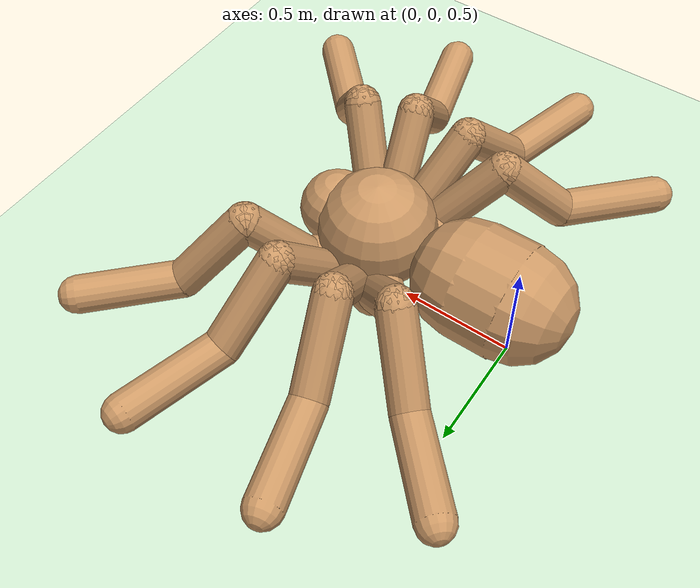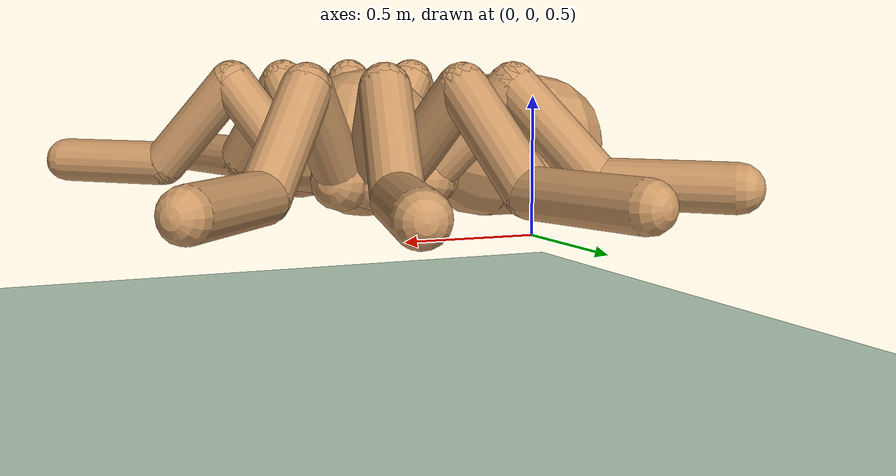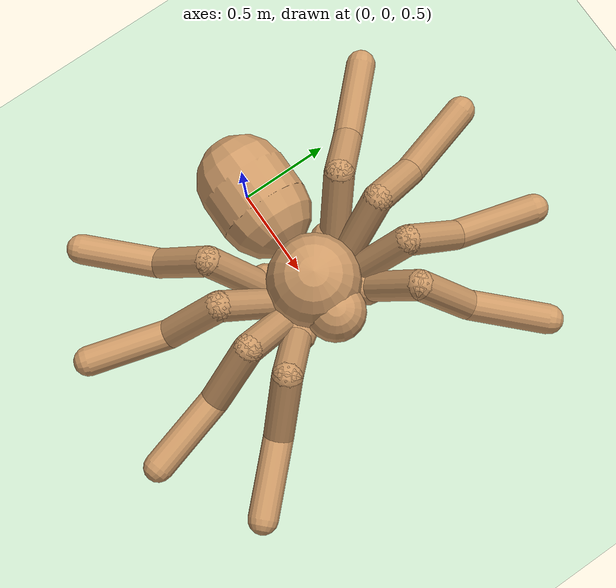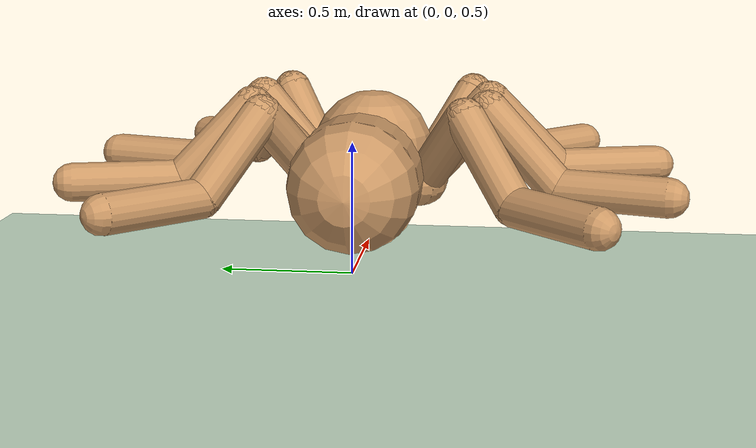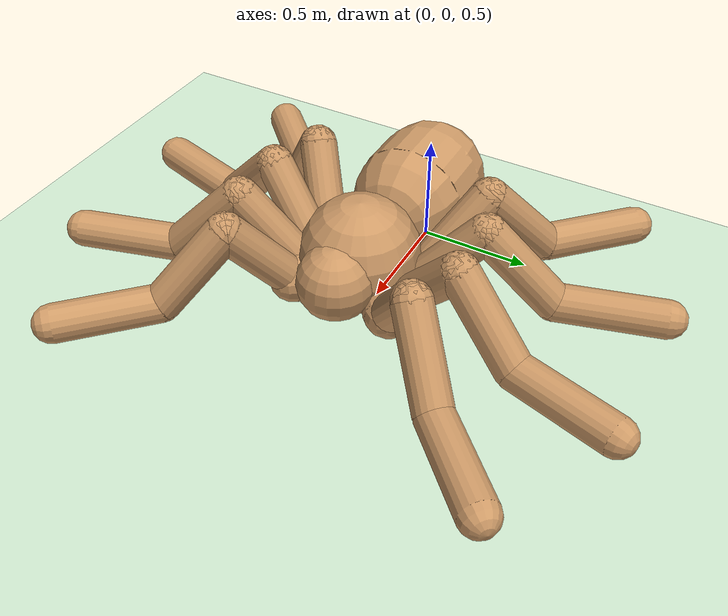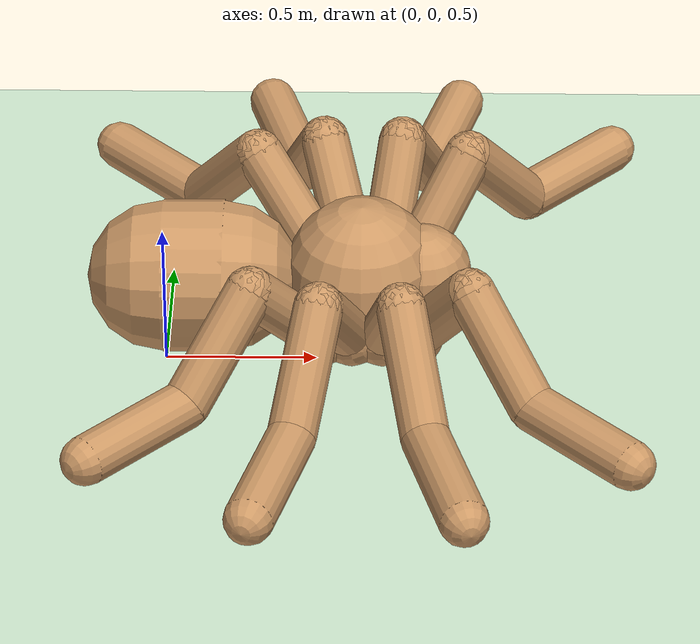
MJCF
<mujoco model="ant">
	<compiler angle="degree" coordinate="local" inertiafromgeom="true"/>
	<option integrator="RK4" timestep="0.002"/>
	<custom>
		<numeric data="0.0 0.0 0.55 1.0 0.0 0.0 0.0 0.0 1.0 0.0 -1.0 0.0 -1.0 0.0 1.0" name="init_qpos"/>
	</custom>
	<default>
		<joint armature="1" damping="1" limited="true"/>
		<geom conaffinity="0" condim="3" density="5.0" friction="1 0.5 0.5" margin="0.01" rgba="0.8 0.6 0.4 1"/>
	</default>
	<asset>
		<texture builtin="gradient" height="100" rgb1="1 1 1" rgb2="0 0 0" type="skybox" width="100"/>
		<texture builtin="flat" height="1278" mark="cross" markrgb="1 1 1" name="texgeom" random="0.01" rgb1="0.8 0.6 0.4" rgb2="0.8 0.6 0.4" type="cube" width="127"/>
		<texture builtin="checker" height="100" name="texplane" rgb1="0 0 0" rgb2="0.8 0.8 0.8" type="2d" width="100"/>
		<material name="MatPlane" reflectance="0.5" shininess="1" specular="1" texrepeat="60 60" texture="texplane"/>
		<material name="geom" texture="texgeom" texuniform="true"/>
	</asset>
	<worldbody>
		<light cutoff="100" diffuse="1 1 1" dir="-0 0 -1.3" directional="true" exponent="1" pos="0 0 1.3" specular=".1 .1 .1"/>
		<geom conaffinity="1" condim="3" material="MatPlane" name="floor" pos="0 0 0" rgba="0.8 0.9 0.8 1" size="40 40 40" type="plane"/>
		<body name="torso" pos="0 0 0.75">

			<!--머리-->
			<geom name="head" pos="0.85 0 0.1" size="0.16" type="sphere"/>
			<geom name="torso_geom" pos="0.65 0 0.1" size="0.25" type="sphere"/>
			<geom name="tail" fromto="0.2 0 0.08 0 0 0.08" size="0.25" type="capsule"/>

			<joint armature="0" damping="0" limited="false" margin="0.01" name="root" pos="0 0 0" type="free"/>

			<!--다리1-->
			<body name="first_leg" pos="0.8 0.2 0">
				<joint axis="0 0 1" name="joint_1" pos="0.0 0.0 0.0" range="-30 30" type="hinge"/>
				<geom fromto="0.0 0.0 0.0 0.02 0.02 0.0" name="joint_1_geom" size="0.1" type="capsule"/>
				<geom fromto="0.02 0.02 0.0 0.2 0.2 0.3" name="aux_1_geom" size="0.08" type="capsule"/>

				<body name="aux_1" pos="0.2 0.2 0">
					<joint axis="-1 1 0" name="hip_1" pos="0 0 0.3" range="-30 30" type="hinge"/>
					<geom fromto="0.0 0.0 0.3 0.2 0.2 0.0" name="first_leg_geom" size="0.08" type="capsule"/>

					<body pos="0.2 0.2 0">
						<joint axis="-1 1 0" name="ankle_1" pos="0.0 0.0 0.0" range="50 100" type="hinge"/>
						<geom fromto="0.0 0.0 0.0 0.3 0.3 0.0" name="first_ankle_geom" size="0.08" type="capsule"/>
					</body>
				</body>
			</body>

			<!--다리2-->
			<body name="second_leg" pos="0.7 0.2 0">

				<joint axis="0 0 1" name="joint_2" pos="0.0 0.0 0.0" range="-30 30" type="hinge"/>
				<geom fromto="0.0 0.0 0.0 0.02 0.02 0.0" name="joint_2_geom" size="0.1" type="capsule"/>
				<geom fromto="0.02 0.02 0.0 0.08 0.28284 0.3" name="aux_2_geom" size="0.08" type="capsule"/>

				<body name="aux_2" pos="0.08 0.28284 0">
					<joint axis="1 0 0" name="hip_2" pos="0.0 0.0 0.3" range="-30 30" type="hinge"/>
					<geom fromto="0.0 0.0 0.3 0.08 0.28284 0.0" name="second_leg_geom" size="0.08" type="capsule"/>

					<body pos="0.08 0.28284 0">
						<joint axis="1 0 0" name="ankle_2" pos="0.0 0.0 0.0" range="-100 -50" type="hinge"/>
						<geom fromto="0.0 0.0 0.0 0.12 0.42426 0.0" name="second_ankle_geom" size="0.08" type="capsule"/>
					</body>
				</body>
			</body>

			<!--다리3-->
			<body name="third_leg" pos="0.6 0.2 0">

				<joint axis="0 0 1" name="joint_3" pos="0.0 0.0 0.0" range="-30 30" type="hinge"/>
				<geom fromto="0.0 0.0 0.0 0.02 0.02 0.0" name="joint_3_geom" size="0.1" type="capsule"/>
				<geom fromto="0.02 0.02 0.0 -0.08 0.28284 0.3" name="aux_3_geom" size="0.08" type="capsule"/>

				<body name="aux_3" pos="-0.08 0.28284 0">
					<joint axis="1 0 0" name="hip_3" pos="0.0 0.0 0.3" range="-30 30" type="hinge"/>
					<geom fromto="0.0 0.0 0.3 -0.08 0.28284 0.0" name="third_leg_geom" size="0.08" type="capsule"/>

					<body pos="-0.08 0.28284 0">
						<joint axis="1 0 0" name="ankle_3" pos="0.0 0.0 0.0" range="-100 -50" type="hinge"/>
						<geom fromto="0.0 0.0 0.0 -0.12 0.42426 0.0" name="third_ankle_geom" size="0.08" type="capsule"/>
					</body>
				</body>
			</body>

			<!--다리4-->
			<body name="fourth_leg" pos="0.5 0.2 0">
				<joint axis="0 0 1" name="joint_4" pos="0.0 0.0 0.0" range="-30 30" type="hinge"/>
				<geom fromto="0.0 0.0 0.0 0.02 0.02 0.0" name="joint_4_geom" size="0.1" type="capsule"/>
				<geom fromto="0.02 0.02 0.0 -0.2 0.2 0.3" name="aux_4_geom" size="0.08" type="capsule"/>

				<body name="aux_4" pos="-0.2 0.2 0">
					<joint axis="1 1 0" name="hip_4" pos="0.0 0.0 0.3" range="-30 30" type="hinge"/>
					<geom fromto="0.0 0.0 0.3 -0.2 0.2 0.0" name="fourth_leg_geom" size="0.08" type="capsule"/>

					<body pos="-0.2 0.2 0">
						<joint axis="1 1 0" name="ankle_4" pos="0.0 0.0 0.0" range="-100 -50" type="hinge"/>
						<geom fromto="0.0 0.0 0.0 -0.3 0.3 0.0" name="fourth_ankle_geom" size="0.08" type="capsule"/>
					</body>
				</body>
			</body>

			<!--다리5-->
			<body name="fifth_leg" pos="0.5 -0.2 0">

				<joint axis="0 0 1" name="joint_5" pos="0.0 0.0 0.0" range="-30 30" type="hinge"/>
				<geom fromto="0.0 0.0 0.0 0.02 -0.02 0.0" name="joint_5_geom" size="0.1" type="capsule"/>
				<geom fromto="0.02 -0.02 0.0 -0.2 -0.2 0.3" name="aux_5_geom" size="0.08" type="capsule"/>

				<body name="aux_5" pos="-0.2 -0.2 0">
					<joint axis="-1 1 0" name="hip_5" pos="0.0 0.0 0.3" range="-30 30" type="hinge"/>
					<geom fromto="0.0 0.0 0.3 -0.2 -0.2 0.0" name="fifth_leg_geom" size="0.08" type="capsule"/>

					<body pos="-0.2 -0.2 0">
						<joint axis="-1 1 0" name="ankle_5" pos="0.0 0.0 0.0" range="-100 -50" type="hinge"/>
						<geom fromto="0.0 0.0 0.0 -0.3 -0.3 0.0" name="fifth_ankle_geom" size="0.08" type="capsule"/>
					</body>
				</body>
			</body>

			<!--다리6-->
			<body name="sixth_leg" pos="0.6 -0.2 0">

				<joint axis="0 0 1" name="joint_6" pos="0.0 0.0 0.0" range="-30 30" type="hinge"/>
				<geom fromto="0.0 0.0 0.0 0.02 -0.02 0.0" name="joint_6_geom" size="0.1" type="capsule"/>
				<geom fromto="0.02 -0.02 0.0 -0.08 -0.28284 0.3" name="aux_6_geom" size="0.08" type="capsule"/>

				<body name="aux_6" pos="-0.08 -0.28284 0">
					<joint axis="-1 0 0" name="hip_6" pos="0.0 0.0 0.3" range="-30 30" type="hinge"/>
					<geom fromto="0.0 0.0 0.3 -0.08 -0.28284 0.0" name="sixth_leg_geom" size="0.08" type="capsule"/>

					<body pos="-0.08 -0.28284 0">
						<joint axis="-1 0 0" name="ankle_6" pos="0.0 0.0 0.0" range="-100 -50" type="hinge"/>
						<geom fromto="0.0 0.0 0.0 -0.12 -0.42426 0.0" name="sixth_ankle_geom" size="0.08" type="capsule"/>
					</body>
				</body>
			</body>

			<!--다리 7-->
			<body name="seven_leg" pos="0.7 -0.2 0">
				<joint axis="0 0 1" name="joint_7" pos="0.0 0.0 0.0" range="-30 30" type="hinge"/>
				<geom fromto="0.0 0.0 0.0 0.02 -0.02 0.0" name="joint_7_geom" size="0.1" type="capsule"/>

				<geom fromto="0.02 -0.02 0.0 0.08 -0.28284 0.3" name="aux_7_geom" size="0.08" type="capsule"/>

				<body name="aux_7" pos="0.08 -0.28284 0">
					<joint axis="1 0 0" name="hip_7" pos="0.0 0.0 0.3" range="-30 30" type="hinge"/>
					<geom fromto="0.0 0.0 0.3 0.08 -0.28284 0.0" name="seventh_leg_geom" size="0.08" type="capsule"/>

					<body pos="0.08 -0.28284 0">
						<joint axis="1 0 0" name="ankle_7" pos="0.0 0.0 0.0" range="50 100" type="hinge"/>
						<geom fromto="0.0 0.0 0.0 0.12 -0.42426 0.0" name="seventh_ankle_geom" size="0.08" type="capsule"/>
					</body>
				</body>
			</body>

			<!--다리 8-->
			<body name="eighth_leg" pos="0.8 -0.2 0">
				<joint axis="0 0 1" name="joint_8" pos="0.0 0.0 0.0" range="-30 30" type="hinge"/>
				<geom fromto="0.0 0.0 0.0 0.02 -0.02 0.0" name="joint_8_geom" size="0.1" type="capsule"/>

				<geom fromto="0.02 -0.02 0.0 0.2 -0.2 0.3" name="aux_8_geom" size="0.08" type="capsule"/>

				<body name="aux_8" pos="0.2 -0.2 0">
					<joint axis="1 1 0" name="hip_8" pos="0.0 0.0 0.3" range="-30 30" type="hinge"/>
					<geom fromto="0.0 0.0 0.3 0.2 -0.2 0.0" name="eighth_leg_geom" size="0.08" type="capsule"/>

					<body pos="0.2 -0.2 0">
						<joint axis="1 1 0" name="ankle_8" pos="0.0 0.0 0.0" range="50 100" type="hinge"/>
						<geom fromto="0.0 0.0 0.0 0.3 -0.3 0.0" name="eighth_ankle_geom" size="0.08" type="capsule"/>
					</body>
				</body>
			</body>

		</body>
	</worldbody>

	<actuator>
		<motor ctrllimited="true" ctrlrange="-1.0 1.0" joint="joint_1" gear="150"/>
		<motor ctrllimited="true" ctrlrange="-1.0 1.0" joint="hip_1" gear="150"/>
		<motor ctrllimited="true" ctrlrange="-1.0 1.0" joint="ankle_1" gear="150"/>

		<motor ctrllimited="true" ctrlrange="-1.0 1.0" joint="joint_2" gear="150"/>
		<motor ctrllimited="true" ctrlrange="-1.0 1.0" joint="hip_2" gear="150"/>
		<motor ctrllimited="true" ctrlrange="-1.0 1.0" joint="ankle_2" gear="150"/>

		<motor ctrllimited="true" ctrlrange="-1.0 1.0" joint="joint_3" gear="150"/>
		<motor ctrllimited="true" ctrlrange="-1.0 1.0" joint="hip_3" gear="150"/>
		<motor ctrllimited="true" ctrlrange="-1.0 1.0" joint="ankle_3" gear="150"/>

		<motor ctrllimited="true" ctrlrange="-1.0 1.0" joint="joint_4" gear="150"/>
		<motor ctrllimited="true" ctrlrange="-1.0 1.0" joint="hip_4" gear="150"/>
		<motor ctrllimited="true" ctrlrange="-1.0 1.0" joint="ankle_4" gear="150"/>

		<motor ctrllimited="true" ctrlrange="-1.0 1.0" joint="joint_5" gear="150"/>
		<motor ctrllimited="true" ctrlrange="-1.0 1.0" joint="hip_5" gear="150"/>
		<motor ctrllimited="true" ctrlrange="-1.0 1.0" joint="ankle_5" gear="150"/>

		<motor ctrllimited="true" ctrlrange="-1.0 1.0" joint="joint_6" gear="150"/>
		<motor ctrllimited="true" ctrlrange="-1.0 1.0" joint="hip_6" gear="150"/>
		<motor ctrllimited="true" ctrlrange="-1.0 1.0" joint="ankle_6" gear="150"/>

		<motor ctrllimited="true" ctrlrange="-1.0 1.0" joint="joint_7" gear="150"/>
		<motor ctrllimited="true" ctrlrange="-1.0 1.0" joint="hip_7" gear="150"/>
		<motor ctrllimited="true" ctrlrange="-1.0 1.0" joint="ankle_7" gear="150"/>

		<motor ctrllimited="true" ctrlrange="-1.0 1.0" joint="joint_8" gear="150"/>
		<motor ctrllimited="true" ctrlrange="-1.0 1.0" joint="hip_8" gear="150"/>
		<motor ctrllimited="true" ctrlrange="-1.0 1.0" joint="ankle_8" gear="150"/>
	</actuator>

</mujoco>
